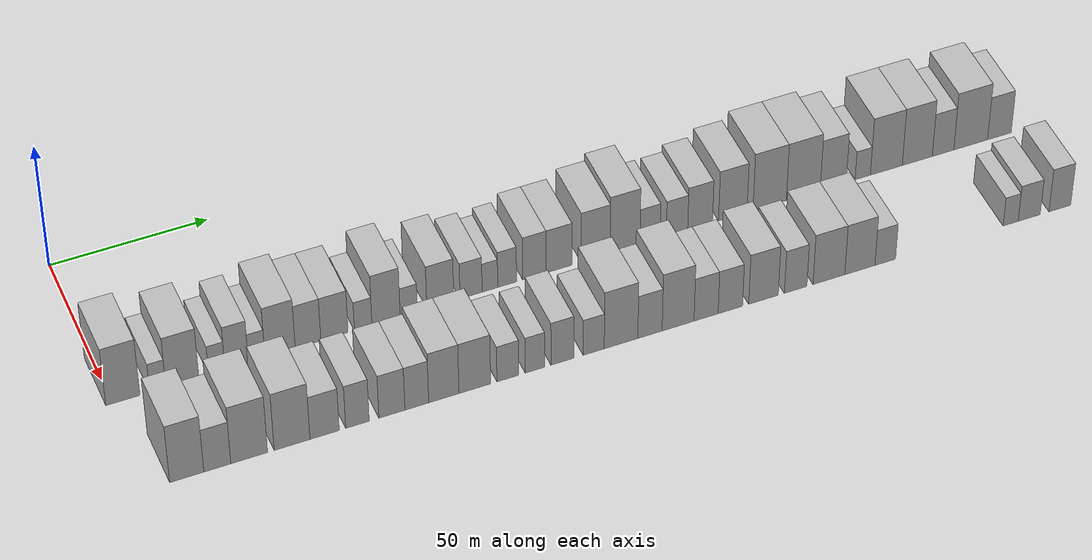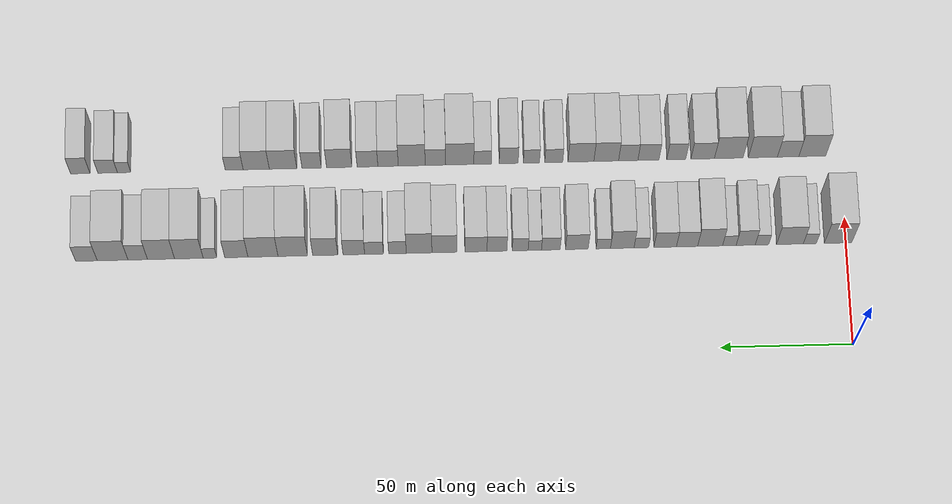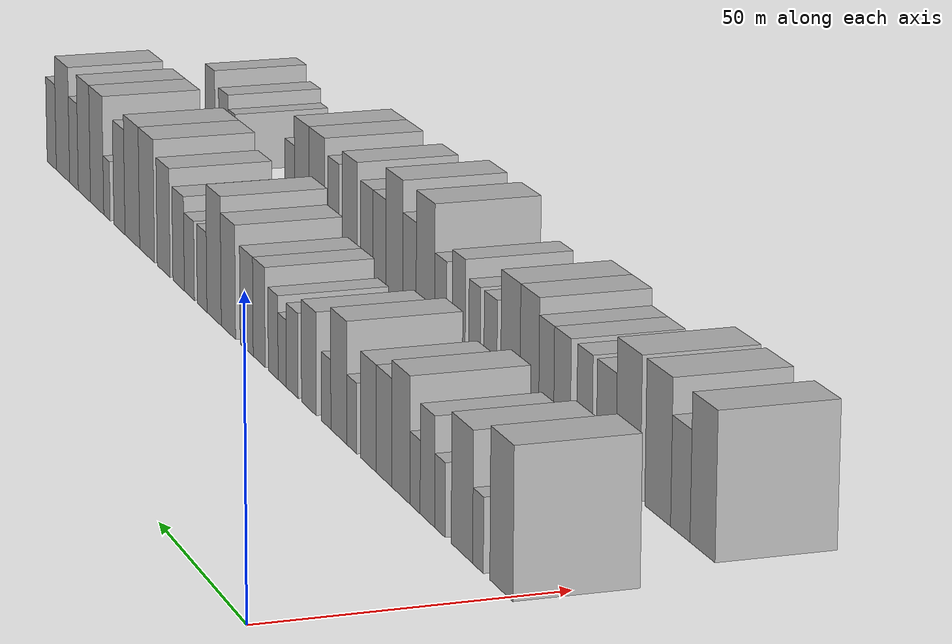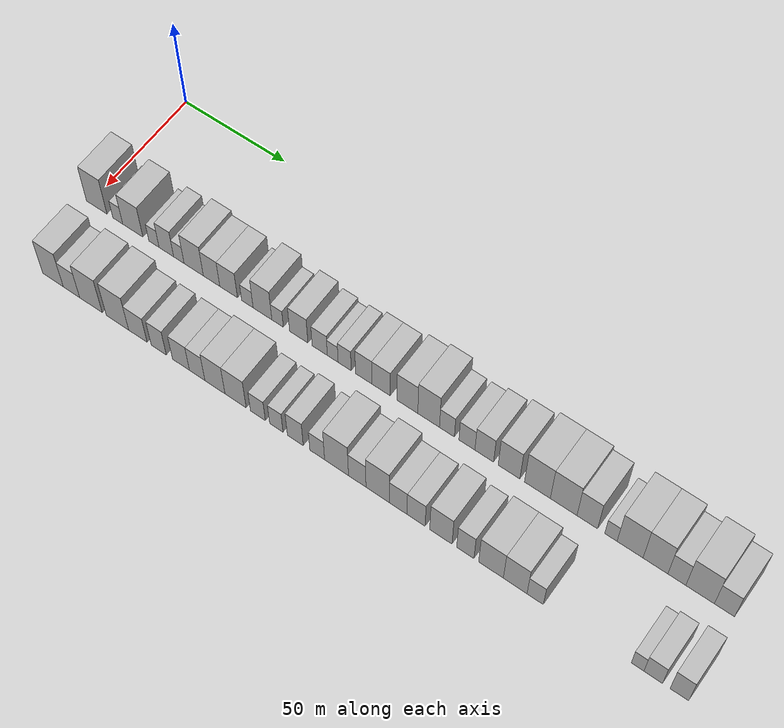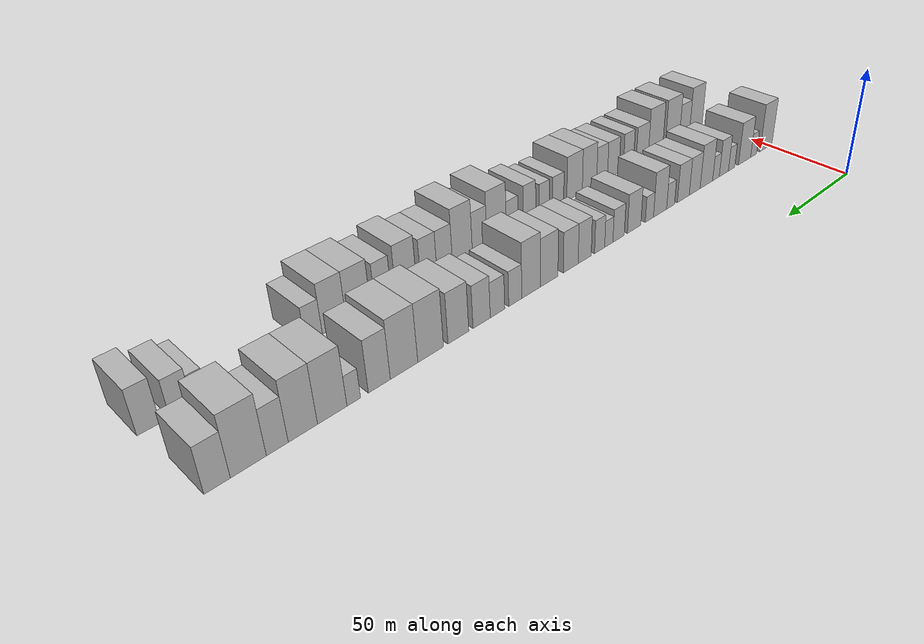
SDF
<sdf version="1.6">
 <world name="default">
  <model name="building_30">
   <static>1</static>
   <pose>50.0000 3.2112 0 0.000000 0.000000 0.000000</pose>
   <link name="link">
    <pose>0 0 12.00 0 0 0</pose>
    <collision name="collision"><geometry><box><size>20.0000 10.4323 24.0000</size></box></geometry></collision>
    <visual name="visual">
     <cast_shadows>0</cast_shadows>
     <geometry><box><size>20.0000 10.4323 24.0000</size></box></geometry>
     <material>
      <script>
       <uri>model://HANNAS_wall/materials/scripts</uri>
       <uri>model://HANNAS_wall/materials/textures</uri>
       <name>vrc/HANNAS_wall</name>
      </script>
     </material>
    </visual>
   </link>
  </model>
  <model name="building_31">
   <static>1</static>
   <pose>50.0000 13.9062 0 0.000000 0.000000 0.000000</pose>
   <link name="link">
    <pose>0 0 6.00 0 0 0</pose>
    <collision name="collision"><geometry><box><size>20.0000 4.9577 12.0000</size></box></geometry></collision>
    <visual name="visual">
     <cast_shadows>0</cast_shadows>
     <geometry><box><size>20.0000 4.9577 12.0000</size></box></geometry>
     <material>
      <script>
       <uri>model://HANNAS_wall/materials/scripts</uri>
       <uri>model://HANNAS_wall/materials/textures</uri>
       <name>vrc/HANNAS_wall</name>
      </script>
     </material>
    </visual>
   </link>
  </model>
  <model name="building_32">
   <static>1</static>
   <pose>50.0000 21.4622 0 0.000000 0.000000 0.000000</pose>
   <link name="link">
    <pose>0 0 10.50 0 0 0</pose>
    <collision name="collision"><geometry><box><size>20.0000 10.1544 21.0000</size></box></geometry></collision>
    <visual name="visual">
     <cast_shadows>0</cast_shadows>
     <geometry><box><size>20.0000 10.1544 21.0000</size></box></geometry>
     <material>
      <script>
       <uri>model://HANNAS_wall/materials/scripts</uri>
       <uri>model://HANNAS_wall/materials/textures</uri>
       <name>vrc/HANNAS_wall</name>
      </script>
     </material>
    </visual>
   </link>
  </model>
  <model name="building_33">
   <static>1</static>
   <pose>50.0000 32.0887 0 0.000000 0.000000 0.000000</pose>
   <link name="link">
    <pose>0 0 6.00 0 0 0</pose>
    <collision name="collision"><geometry><box><size>20.0000 5.0985 12.0000</size></box></geometry></collision>
    <visual name="visual">
     <cast_shadows>0</cast_shadows>
     <geometry><box><size>20.0000 5.0985 12.0000</size></box></geometry>
     <material>
      <script>
       <uri>model://HANNAS_wall/materials/scripts</uri>
       <uri>model://HANNAS_wall/materials/textures</uri>
       <name>vrc/HANNAS_wall</name>
      </script>
     </material>
    </visual>
   </link>
  </model>
  <model name="building_34">
   <static>1</static>
   <pose>50.0000 38.2567 0 0.000000 0.000000 0.000000</pose>
   <link name="link">
    <pose>0 0 9.00 0 0 0</pose>
    <collision name="collision"><geometry><box><size>20.0000 7.2375 18.0000</size></box></geometry></collision>
    <visual name="visual">
     <cast_shadows>0</cast_shadows>
     <geometry><box><size>20.0000 7.2375 18.0000</size></box></geometry>
     <material>
      <script>
       <uri>model://HANNAS_wall/materials/scripts</uri>
       <uri>model://HANNAS_wall/materials/textures</uri>
       <name>vrc/HANNAS_wall</name>
      </script>
     </material>
    </visual>
   </link>
  </model>
  <model name="building_35">
   <static>1</static>
   <pose>50.0000 44.4460 0 0.000000 0.000000 0.000000</pose>
   <link name="link">
    <pose>0 0 6.00 0 0 0</pose>
    <collision name="collision"><geometry><box><size>20.0000 5.1411 12.0000</size></box></geometry></collision>
    <visual name="visual">
     <cast_shadows>0</cast_shadows>
     <geometry><box><size>20.0000 5.1411 12.0000</size></box></geometry>
     <material>
      <script>
       <uri>model://HANNAS_wall/materials/scripts</uri>
       <uri>model://HANNAS_wall/materials/textures</uri>
       <name>vrc/HANNAS_wall</name>
      </script>
     </material>
    </visual>
   </link>
  </model>
  <model name="building_36">
   <static>1</static>
   <pose>50.0000 51.7506 0 0.000000 0.000000 0.000000</pose>
   <link name="link">
    <pose>0 0 10.50 0 0 0</pose>
    <collision name="collision"><geometry><box><size>20.0000 9.4679 21.0000</size></box></geometry></collision>
    <visual name="visual">
     <cast_shadows>0</cast_shadows>
     <geometry><box><size>20.0000 9.4679 21.0000</size></box></geometry>
     <material>
      <script>
       <uri>model://HANNAS_wall/materials/scripts</uri>
       <uri>model://HANNAS_wall/materials/textures</uri>
       <name>vrc/HANNAS_wall</name>
      </script>
     </material>
    </visual>
   </link>
  </model>
  <model name="building_37">
   <static>1</static>
   <pose>50.0000 60.5005 0 0.000000 0.000000 0.000000</pose>
   <link name="link">
    <pose>0 0 9.00 0 0 0</pose>
    <collision name="collision"><geometry><box><size>20.0000 8.0320 18.0000</size></box></geometry></collision>
    <visual name="visual">
     <cast_shadows>0</cast_shadows>
     <geometry><box><size>20.0000 8.0320 18.0000</size></box></geometry>
     <material>
      <script>
       <uri>model://HANNAS_wall/materials/scripts</uri>
       <uri>model://HANNAS_wall/materials/textures</uri>
       <name>vrc/HANNAS_wall</name>
      </script>
     </material>
    </visual>
   </link>
  </model>
  <model name="building_38">
   <static>1</static>
   <pose>50.0000 68.7919 0 0.000000 0.000000 0.000000</pose>
   <link name="link">
    <pose>0 0 9.00 0 0 0</pose>
    <collision name="collision"><geometry><box><size>20.0000 8.5508 18.0000</size></box></geometry></collision>
    <visual name="visual">
     <cast_shadows>0</cast_shadows>
     <geometry><box><size>20.0000 8.5508 18.0000</size></box></geometry>
     <material>
      <script>
       <uri>model://HANNAS_wall/materials/scripts</uri>
       <uri>model://HANNAS_wall/materials/textures</uri>
       <name>vrc/HANNAS_wall</name>
      </script>
     </material>
    </visual>
   </link>
  </model>
  <model name="building_39">
   <static>1</static>
   <pose>50.0000 77.8318 0 0.000000 0.000000 0.000000</pose>
   <link name="link">
    <pose>0 0 6.00 0 0 0</pose>
    <collision name="collision"><geometry><box><size>20.0000 5.5289 12.0000</size></box></geometry></collision>
    <visual name="visual">
     <cast_shadows>0</cast_shadows>
     <geometry><box><size>20.0000 5.5289 12.0000</size></box></geometry>
     <material>
      <script>
       <uri>model://HANNAS_wall/materials/scripts</uri>
       <uri>model://HANNAS_wall/materials/textures</uri>
       <name>vrc/HANNAS_wall</name>
      </script>
     </material>
    </visual>
   </link>
  </model>
  <model name="building_40">
   <static>1</static>
   <pose>50.0000 85.0678 0 0.000000 0.000000 0.000000</pose>
   <link name="link">
    <pose>0 0 10.50 0 0 0</pose>
    <collision name="collision"><geometry><box><size>20.0000 8.9433 21.0000</size></box></geometry></collision>
    <visual name="visual">
     <cast_shadows>0</cast_shadows>
     <geometry><box><size>20.0000 8.9433 21.0000</size></box></geometry>
     <material>
      <script>
       <uri>model://HANNAS_wall/materials/scripts</uri>
       <uri>model://HANNAS_wall/materials/textures</uri>
       <name>vrc/HANNAS_wall</name>
      </script>
     </material>
    </visual>
   </link>
  </model>
  <model name="building_41">
   <static>1</static>
   <pose>50.0000 92.2608 0 0.000000 0.000000 0.000000</pose>
   <link name="link">
    <pose>0 0 6.00 0 0 0</pose>
    <collision name="collision"><geometry><box><size>20.0000 5.4427 12.0000</size></box></geometry></collision>
    <visual name="visual">
     <cast_shadows>0</cast_shadows>
     <geometry><box><size>20.0000 5.4427 12.0000</size></box></geometry>
     <material>
      <script>
       <uri>model://HANNAS_wall/materials/scripts</uri>
       <uri>model://HANNAS_wall/materials/textures</uri>
       <name>vrc/HANNAS_wall</name>
      </script>
     </material>
    </visual>
   </link>
  </model>
  <model name="building_42">
   <static>1</static>
   <pose>50.0000 102.2842 0 0.000000 0.000000 0.000000</pose>
   <link name="link">
    <pose>0 0 9.00 0 0 0</pose>
    <collision name="collision"><geometry><box><size>20.0000 8.6041 18.0000</size></box></geometry></collision>
    <visual name="visual">
     <cast_shadows>0</cast_shadows>
     <geometry><box><size>20.0000 8.6041 18.0000</size></box></geometry>
     <material>
      <script>
       <uri>model://HANNAS_wall/materials/scripts</uri>
       <uri>model://HANNAS_wall/materials/textures</uri>
       <name>vrc/HANNAS_wall</name>
      </script>
     </material>
    </visual>
   </link>
  </model>
  <model name="building_43">
   <static>1</static>
   <pose>50.0000 112.1249 0 0.000000 0.000000 0.000000</pose>
   <link name="link">
    <pose>0 0 7.50 0 0 0</pose>
    <collision name="collision"><geometry><box><size>20.0000 7.0772 15.0000</size></box></geometry></collision>
    <visual name="visual">
     <cast_shadows>0</cast_shadows>
     <geometry><box><size>20.0000 7.0772 15.0000</size></box></geometry>
     <material>
      <script>
       <uri>model://HANNAS_wall/materials/scripts</uri>
       <uri>model://HANNAS_wall/materials/textures</uri>
       <name>vrc/HANNAS_wall</name>
      </script>
     </material>
    </visual>
   </link>
  </model>
  <model name="building_44">
   <static>1</static>
   <pose>50.0000 118.1817 0 0.000000 0.000000 0.000000</pose>
   <link name="link">
    <pose>0 0 6.00 0 0 0</pose>
    <collision name="collision"><geometry><box><size>20.0000 5.0364 12.0000</size></box></geometry></collision>
    <visual name="visual">
     <cast_shadows>0</cast_shadows>
     <geometry><box><size>20.0000 5.0364 12.0000</size></box></geometry>
     <material>
      <script>
       <uri>model://HANNAS_wall/materials/scripts</uri>
       <uri>model://HANNAS_wall/materials/textures</uri>
       <name>vrc/HANNAS_wall</name>
      </script>
     </material>
    </visual>
   </link>
  </model>
  <model name="building_45">
   <static>1</static>
   <pose>50.0000 123.7220 0 0.000000 0.000000 0.000000</pose>
   <link name="link">
    <pose>0 0 7.50 0 0 0</pose>
    <collision name="collision"><geometry><box><size>20.0000 6.0442 15.0000</size></box></geometry></collision>
    <visual name="visual">
     <cast_shadows>0</cast_shadows>
     <geometry><box><size>20.0000 6.0442 15.0000</size></box></geometry>
     <material>
      <script>
       <uri>model://HANNAS_wall/materials/scripts</uri>
       <uri>model://HANNAS_wall/materials/textures</uri>
       <name>vrc/HANNAS_wall</name>
      </script>
     </material>
    </visual>
   </link>
  </model>
  <model name="building_46">
   <static>1</static>
   <pose>50.0000 132.5197 0 0.000000 0.000000 0.000000</pose>
   <link name="link">
    <pose>0 0 9.00 0 0 0</pose>
    <collision name="collision"><geometry><box><size>20.0000 7.5513 18.0000</size></box></geometry></collision>
    <visual name="visual">
     <cast_shadows>0</cast_shadows>
     <geometry><box><size>20.0000 7.5513 18.0000</size></box></geometry>
     <material>
      <script>
       <uri>model://HANNAS_wall/materials/scripts</uri>
       <uri>model://HANNAS_wall/materials/textures</uri>
       <name>vrc/HANNAS_wall</name>
      </script>
     </material>
    </visual>
   </link>
  </model>
  <model name="building_47">
   <static>1</static>
   <pose>50.0000 140.4790 0 0.000000 0.000000 0.000000</pose>
   <link name="link">
    <pose>0 0 9.00 0 0 0</pose>
    <collision name="collision"><geometry><box><size>20.0000 8.3673 18.0000</size></box></geometry></collision>
    <visual name="visual">
     <cast_shadows>0</cast_shadows>
     <geometry><box><size>20.0000 8.3673 18.0000</size></box></geometry>
     <material>
      <script>
       <uri>model://HANNAS_wall/materials/scripts</uri>
       <uri>model://HANNAS_wall/materials/textures</uri>
       <name>vrc/HANNAS_wall</name>
      </script>
     </material>
    </visual>
   </link>
  </model>
  <model name="building_48">
   <static>1</static>
   <pose>50.0000 152.3881 0 0.000000 0.000000 0.000000</pose>
   <link name="link">
    <pose>0 0 10.50 0 0 0</pose>
    <collision name="collision"><geometry><box><size>20.0000 9.4509 21.0000</size></box></geometry></collision>
    <visual name="visual">
     <cast_shadows>0</cast_shadows>
     <geometry><box><size>20.0000 9.4509 21.0000</size></box></geometry>
     <material>
      <script>
       <uri>model://HANNAS_wall/materials/scripts</uri>
       <uri>model://HANNAS_wall/materials/textures</uri>
       <name>vrc/HANNAS_wall</name>
      </script>
     </material>
    </visual>
   </link>
  </model>
  <model name="building_49">
   <static>1</static>
   <pose>50.0000 161.9775 0 0.000000 0.000000 0.000000</pose>
   <link name="link">
    <pose>0 0 12.00 0 0 0</pose>
    <collision name="collision"><geometry><box><size>20.0000 9.7279 24.0000</size></box></geometry></collision>
    <visual name="visual">
     <cast_shadows>0</cast_shadows>
     <geometry><box><size>20.0000 9.7279 24.0000</size></box></geometry>
     <material>
      <script>
       <uri>model://HANNAS_wall/materials/scripts</uri>
       <uri>model://HANNAS_wall/materials/textures</uri>
       <name>vrc/HANNAS_wall</name>
      </script>
     </material>
    </visual>
   </link>
  </model>
  <model name="building_50">
   <static>1</static>
   <pose>50.0000 170.1630 0 0.000000 0.000000 0.000000</pose>
   <link name="link">
    <pose>0 0 7.50 0 0 0</pose>
    <collision name="collision"><geometry><box><size>20.0000 6.6432 15.0000</size></box></geometry></collision>
    <visual name="visual">
     <cast_shadows>0</cast_shadows>
     <geometry><box><size>20.0000 6.6432 15.0000</size></box></geometry>
     <material>
      <script>
       <uri>model://HANNAS_wall/materials/scripts</uri>
       <uri>model://HANNAS_wall/materials/textures</uri>
       <name>vrc/HANNAS_wall</name>
      </script>
     </material>
    </visual>
   </link>
  </model>
  <model name="building_51">
   <static>1</static>
   <pose>50.0000 179.0252 0 0.000000 0.000000 0.000000</pose>
   <link name="link">
    <pose>0 0 7.50 0 0 0</pose>
    <collision name="collision"><geometry><box><size>20.0000 7.0812 15.0000</size></box></geometry></collision>
    <visual name="visual">
     <cast_shadows>0</cast_shadows>
     <geometry><box><size>20.0000 7.0812 15.0000</size></box></geometry>
     <material>
      <script>
       <uri>model://HANNAS_wall/materials/scripts</uri>
       <uri>model://HANNAS_wall/materials/textures</uri>
       <name>vrc/HANNAS_wall</name>
      </script>
     </material>
    </visual>
   </link>
  </model>
  <model name="building_52">
   <static>1</static>
   <pose>50.0000 186.6661 0 0.000000 0.000000 0.000000</pose>
   <link name="link">
    <pose>0 0 9.00 0 0 0</pose>
    <collision name="collision"><geometry><box><size>20.0000 8.2006 18.0000</size></box></geometry></collision>
    <visual name="visual">
     <cast_shadows>0</cast_shadows>
     <geometry><box><size>20.0000 8.2006 18.0000</size></box></geometry>
     <material>
      <script>
       <uri>model://HANNAS_wall/materials/scripts</uri>
       <uri>model://HANNAS_wall/materials/textures</uri>
       <name>vrc/HANNAS_wall</name>
      </script>
     </material>
    </visual>
   </link>
  </model>
  <model name="building_53">
   <static>1</static>
   <pose>50.0000 197.4970 0 0.000000 0.000000 0.000000</pose>
   <link name="link">
    <pose>0 0 10.50 0 0 0</pose>
    <collision name="collision"><geometry><box><size>20.0000 9.4611 21.0000</size></box></geometry></collision>
    <visual name="visual">
     <cast_shadows>0</cast_shadows>
     <geometry><box><size>20.0000 9.4611 21.0000</size></box></geometry>
     <material>
      <script>
       <uri>model://HANNAS_wall/materials/scripts</uri>
       <uri>model://HANNAS_wall/materials/textures</uri>
       <name>vrc/HANNAS_wall</name>
      </script>
     </material>
    </visual>
   </link>
  </model>
  <model name="building_54">
   <static>1</static>
   <pose>50.0000 209.7972 0 0.000000 0.000000 0.000000</pose>
   <link name="link">
    <pose>0 0 12.00 0 0 0</pose>
    <collision name="collision"><geometry><box><size>20.0000 11.1394 24.0000</size></box></geometry></collision>
    <visual name="visual">
     <cast_shadows>0</cast_shadows>
     <geometry><box><size>20.0000 11.1394 24.0000</size></box></geometry>
     <material>
      <script>
       <uri>model://HANNAS_wall/materials/scripts</uri>
       <uri>model://HANNAS_wall/materials/textures</uri>
       <name>vrc/HANNAS_wall</name>
      </script>
     </material>
    </visual>
   </link>
  </model>
  <model name="building_55">
   <static>1</static>
   <pose>50.0000 221.0538 0 0.000000 0.000000 0.000000</pose>
   <link name="link">
    <pose>0 0 12.00 0 0 0</pose>
    <collision name="collision"><geometry><box><size>20.0000 11.3738 24.0000</size></box></geometry></collision>
    <visual name="visual">
     <cast_shadows>0</cast_shadows>
     <geometry><box><size>20.0000 11.3738 24.0000</size></box></geometry>
     <material>
      <script>
       <uri>model://HANNAS_wall/materials/scripts</uri>
       <uri>model://HANNAS_wall/materials/textures</uri>
       <name>vrc/HANNAS_wall</name>
      </script>
     </material>
    </visual>
   </link>
  </model>
  <model name="building_56">
   <static>1</static>
   <pose>50.0000 231.1138 0 0.000000 0.000000 0.000000</pose>
   <link name="link">
    <pose>0 0 10.50 0 0 0</pose>
    <collision name="collision"><geometry><box><size>20.0000 8.7461 21.0000</size></box></geometry></collision>
    <visual name="visual">
     <cast_shadows>0</cast_shadows>
     <geometry><box><size>20.0000 8.7461 21.0000</size></box></geometry>
     <material>
      <script>
       <uri>model://HANNAS_wall/materials/scripts</uri>
       <uri>model://HANNAS_wall/materials/textures</uri>
       <name>vrc/HANNAS_wall</name>
      </script>
     </material>
    </visual>
   </link>
  </model>
  <model name="building_57">
   <static>1</static>
   <pose>50.0000 241.0736 0 0.000000 0.000000 0.000000</pose>
   <link name="link">
    <pose>0 0 6.00 0 0 0</pose>
    <collision name="collision"><geometry><box><size>20.0000 5.1735 12.0000</size></box></geometry></collision>
    <visual name="visual">
     <cast_shadows>0</cast_shadows>
     <geometry><box><size>20.0000 5.1735 12.0000</size></box></geometry>
     <material>
      <script>
       <uri>model://HANNAS_wall/materials/scripts</uri>
       <uri>model://HANNAS_wall/materials/textures</uri>
       <name>vrc/HANNAS_wall</name>
      </script>
     </material>
    </visual>
   </link>
  </model>
  <model name="building_58">
   <static>1</static>
   <pose>50.0000 249.0669 0 0.000000 0.000000 0.000000</pose>
   <link name="link">
    <pose>0 0 12.00 0 0 0</pose>
    <collision name="collision"><geometry><box><size>20.0000 10.8131 24.0000</size></box></geometry></collision>
    <visual name="visual">
     <cast_shadows>0</cast_shadows>
     <geometry><box><size>20.0000 10.8131 24.0000</size></box></geometry>
     <material>
      <script>
       <uri>model://HANNAS_wall/materials/scripts</uri>
       <uri>model://HANNAS_wall/materials/textures</uri>
       <name>vrc/HANNAS_wall</name>
      </script>
     </material>
    </visual>
   </link>
  </model>
  <model name="building_59">
   <static>1</static>
   <pose>50.0000 259.5977 0 0.000000 0.000000 0.000000</pose>
   <link name="link">
    <pose>0 0 12.00 0 0 0</pose>
    <collision name="collision"><geometry><box><size>20.0000 10.2486 24.0000</size></box></geometry></collision>
    <visual name="visual">
     <cast_shadows>0</cast_shadows>
     <geometry><box><size>20.0000 10.2486 24.0000</size></box></geometry>
     <material>
      <script>
       <uri>model://HANNAS_wall/materials/scripts</uri>
       <uri>model://HANNAS_wall/materials/textures</uri>
       <name>vrc/HANNAS_wall</name>
      </script>
     </material>
    </visual>
   </link>
  </model>
  <model name="building_60">
   <static>1</static>
   <pose>50.0000 268.4037 0 0.000000 0.000000 0.000000</pose>
   <link name="link">
    <pose>0 0 9.00 0 0 0</pose>
    <collision name="collision"><geometry><box><size>20.0000 7.3633 18.0000</size></box></geometry></collision>
    <visual name="visual">
     <cast_shadows>0</cast_shadows>
     <geometry><box><size>20.0000 7.3633 18.0000</size></box></geometry>
     <material>
      <script>
       <uri>model://HANNAS_wall/materials/scripts</uri>
       <uri>model://HANNAS_wall/materials/textures</uri>
       <name>vrc/HANNAS_wall</name>
      </script>
     </material>
    </visual>
   </link>
  </model>
  <model name="building_61">
   <static>1</static>
   <pose>50.0000 277.8873 0 0.000000 0.000000 0.000000</pose>
   <link name="link">
    <pose>0 0 12.00 0 0 0</pose>
    <collision name="collision"><geometry><box><size>20.0000 11.6039 24.0000</size></box></geometry></collision>
    <visual name="visual">
     <cast_shadows>0</cast_shadows>
     <geometry><box><size>20.0000 11.6039 24.0000</size></box></geometry>
     <material>
      <script>
       <uri>model://HANNAS_wall/materials/scripts</uri>
       <uri>model://HANNAS_wall/materials/textures</uri>
       <name>vrc/HANNAS_wall</name>
      </script>
     </material>
    </visual>
   </link>
  </model>
  <model name="building_62">
   <static>1</static>
   <pose>50.0000 287.7687 0 0.000000 0.000000 0.000000</pose>
   <link name="link">
    <pose>0 0 9.00 0 0 0</pose>
    <collision name="collision"><geometry><box><size>20.0000 8.1589 18.0000</size></box></geometry></collision>
    <visual name="visual">
     <cast_shadows>0</cast_shadows>
     <geometry><box><size>20.0000 8.1589 18.0000</size></box></geometry>
     <material>
      <script>
       <uri>model://HANNAS_wall/materials/scripts</uri>
       <uri>model://HANNAS_wall/materials/textures</uri>
       <name>vrc/HANNAS_wall</name>
      </script>
     </material>
    </visual>
   </link>
  </model>
  <model name="building_94">
   <static>1</static>
   <pose>85.0000 10.7877 0 0.000000 0.000000 0.000000</pose>
   <link name="link">
    <pose>0 0 12.00 0 0 0</pose>
    <collision name="collision"><geometry><box><size>20.0000 10.3205 24.0000</size></box></geometry></collision>
    <visual name="visual">
     <cast_shadows>0</cast_shadows>
     <geometry><box><size>20.0000 10.3205 24.0000</size></box></geometry>
     <material>
      <script>
       <uri>model://HANNAS_wall/materials/scripts</uri>
       <uri>model://HANNAS_wall/materials/textures</uri>
       <name>vrc/HANNAS_wall</name>
      </script>
     </material>
    </visual>
   </link>
  </model>
  <model name="building_95">
   <static>1</static>
   <pose>85.0000 20.0379 0 0.000000 0.000000 0.000000</pose>
   <link name="link">
    <pose>0 0 9.00 0 0 0</pose>
    <collision name="collision"><geometry><box><size>20.0000 8.1799 18.0000</size></box></geometry></collision>
    <visual name="visual">
     <cast_shadows>0</cast_shadows>
     <geometry><box><size>20.0000 8.1799 18.0000</size></box></geometry>
     <material>
      <script>
       <uri>model://HANNAS_wall/materials/scripts</uri>
       <uri>model://HANNAS_wall/materials/textures</uri>
       <name>vrc/HANNAS_wall</name>
      </script>
     </material>
    </visual>
   </link>
  </model>
  <model name="building_96">
   <static>1</static>
   <pose>85.0000 29.7120 0 0.000000 0.000000 0.000000</pose>
   <link name="link">
    <pose>0 0 12.00 0 0 0</pose>
    <collision name="collision"><geometry><box><size>20.0000 11.1683 24.0000</size></box></geometry></collision>
    <visual name="visual">
     <cast_shadows>0</cast_shadows>
     <geometry><box><size>20.0000 11.1683 24.0000</size></box></geometry>
     <material>
      <script>
       <uri>model://HANNAS_wall/materials/scripts</uri>
       <uri>model://HANNAS_wall/materials/textures</uri>
       <name>vrc/HANNAS_wall</name>
      </script>
     </material>
    </visual>
   </link>
  </model>
  <model name="building_97">
   <static>1</static>
   <pose>85.0000 42.7817 0 0.000000 0.000000 0.000000</pose>
   <link name="link">
    <pose>0 0 12.00 0 0 0</pose>
    <collision name="collision"><geometry><box><size>20.0000 10.9710 24.0000</size></box></geometry></collision>
    <visual name="visual">
     <cast_shadows>0</cast_shadows>
     <geometry><box><size>20.0000 10.9710 24.0000</size></box></geometry>
     <material>
      <script>
       <uri>model://HANNAS_wall/materials/scripts</uri>
       <uri>model://HANNAS_wall/materials/textures</uri>
       <name>vrc/HANNAS_wall</name>
      </script>
     </material>
    </visual>
   </link>
  </model>
  <model name="building_98">
   <static>1</static>
   <pose>85.0000 52.7599 0 0.000000 0.000000 0.000000</pose>
   <link name="link">
    <pose>0 0 9.00 0 0 0</pose>
    <collision name="collision"><geometry><box><size>20.0000 8.9854 18.0000</size></box></geometry></collision>
    <visual name="visual">
     <cast_shadows>0</cast_shadows>
     <geometry><box><size>20.0000 8.9854 18.0000</size></box></geometry>
     <material>
      <script>
       <uri>model://HANNAS_wall/materials/scripts</uri>
       <uri>model://HANNAS_wall/materials/textures</uri>
       <name>vrc/HANNAS_wall</name>
      </script>
     </material>
    </visual>
   </link>
  </model>
  <model name="building_99">
   <static>1</static>
   <pose>85.0000 62.8798 0 0.000000 0.000000 0.000000</pose>
   <link name="link">
    <pose>0 0 9.00 0 0 0</pose>
    <collision name="collision"><geometry><box><size>20.0000 7.2545 18.0000</size></box></geometry></collision>
    <visual name="visual">
     <cast_shadows>0</cast_shadows>
     <geometry><box><size>20.0000 7.2545 18.0000</size></box></geometry>
     <material>
      <script>
       <uri>model://HANNAS_wall/materials/scripts</uri>
       <uri>model://HANNAS_wall/materials/textures</uri>
       <name>vrc/HANNAS_wall</name>
      </script>
     </material>
    </visual>
   </link>
  </model>
  <model name="building_100">
   <static>1</static>
   <pose>85.0000 73.5448 0 0.000000 0.000000 0.000000</pose>
   <link name="link">
    <pose>0 0 9.00 0 0 0</pose>
    <collision name="collision"><geometry><box><size>20.0000 8.0755 18.0000</size></box></geometry></collision>
    <visual name="visual">
     <cast_shadows>0</cast_shadows>
     <geometry><box><size>20.0000 8.0755 18.0000</size></box></geometry>
     <material>
      <script>
       <uri>model://HANNAS_wall/materials/scripts</uri>
       <uri>model://HANNAS_wall/materials/textures</uri>
       <name>vrc/HANNAS_wall</name>
      </script>
     </material>
    </visual>
   </link>
  </model>
  <model name="building_101">
   <static>1</static>
   <pose>85.0000 81.2757 0 0.000000 0.000000 0.000000</pose>
   <link name="link">
    <pose>0 0 9.00 0 0 0</pose>
    <collision name="collision"><geometry><box><size>20.0000 7.3863 18.0000</size></box></geometry></collision>
    <visual name="visual">
     <cast_shadows>0</cast_shadows>
     <geometry><box><size>20.0000 7.3863 18.0000</size></box></geometry>
     <material>
      <script>
       <uri>model://HANNAS_wall/materials/scripts</uri>
       <uri>model://HANNAS_wall/materials/textures</uri>
       <name>vrc/HANNAS_wall</name>
      </script>
     </material>
    </visual>
   </link>
  </model>
  <model name="building_102">
   <static>1</static>
   <pose>85.0000 89.6971 0 0.000000 0.000000 0.000000</pose>
   <link name="link">
    <pose>0 0 10.50 0 0 0</pose>
    <collision name="collision"><geometry><box><size>20.0000 9.4564 21.0000</size></box></geometry></collision>
    <visual name="visual">
     <cast_shadows>0</cast_shadows>
     <geometry><box><size>20.0000 9.4564 21.0000</size></box></geometry>
     <material>
      <script>
       <uri>model://HANNAS_wall/materials/scripts</uri>
       <uri>model://HANNAS_wall/materials/textures</uri>
       <name>vrc/HANNAS_wall</name>
      </script>
     </material>
    </visual>
   </link>
  </model>
  <model name="building_103">
   <static>1</static>
   <pose>85.0000 99.3850 0 0.000000 0.000000 0.000000</pose>
   <link name="link">
    <pose>0 0 10.50 0 0 0</pose>
    <collision name="collision"><geometry><box><size>20.0000 9.9195 21.0000</size></box></geometry></collision>
    <visual name="visual">
     <cast_shadows>0</cast_shadows>
     <geometry><box><size>20.0000 9.9195 21.0000</size></box></geometry>
     <material>
      <script>
       <uri>model://HANNAS_wall/materials/scripts</uri>
       <uri>model://HANNAS_wall/materials/textures</uri>
       <name>vrc/HANNAS_wall</name>
      </script>
     </material>
    </visual>
   </link>
  </model>
  <model name="building_104">
   <static>1</static>
   <pose>85.0000 109.7966 0 0.000000 0.000000 0.000000</pose>
   <link name="link">
    <pose>0 0 7.50 0 0 0</pose>
    <collision name="collision"><geometry><box><size>20.0000 6.9036 15.0000</size></box></geometry></collision>
    <visual name="visual">
     <cast_shadows>0</cast_shadows>
     <geometry><box><size>20.0000 6.9036 15.0000</size></box></geometry>
     <material>
      <script>
       <uri>model://HANNAS_wall/materials/scripts</uri>
       <uri>model://HANNAS_wall/materials/textures</uri>
       <name>vrc/HANNAS_wall</name>
      </script>
     </material>
    </visual>
   </link>
  </model>
  <model name="building_105">
   <static>1</static>
   <pose>85.0000 118.3284 0 0.000000 0.000000 0.000000</pose>
   <link name="link">
    <pose>0 0 7.50 0 0 0</pose>
    <collision name="collision"><geometry><box><size>20.0000 6.1600 15.0000</size></box></geometry></collision>
    <visual name="visual">
     <cast_shadows>0</cast_shadows>
     <geometry><box><size>20.0000 6.1600 15.0000</size></box></geometry>
     <material>
      <script>
       <uri>model://HANNAS_wall/materials/scripts</uri>
       <uri>model://HANNAS_wall/materials/textures</uri>
       <name>vrc/HANNAS_wall</name>
      </script>
     </material>
    </visual>
   </link>
  </model>
  <model name="building_106">
   <static>1</static>
   <pose>85.0000 127.0270 0 0.000000 0.000000 0.000000</pose>
   <link name="link">
    <pose>0 0 9.00 0 0 0</pose>
    <collision name="collision"><geometry><box><size>20.0000 7.2371 18.0000</size></box></geometry></collision>
    <visual name="visual">
     <cast_shadows>0</cast_shadows>
     <geometry><box><size>20.0000 7.2371 18.0000</size></box></geometry>
     <material>
      <script>
       <uri>model://HANNAS_wall/materials/scripts</uri>
       <uri>model://HANNAS_wall/materials/textures</uri>
       <name>vrc/HANNAS_wall</name>
      </script>
     </material>
    </visual>
   </link>
  </model>
  <model name="building_107">
   <static>1</static>
   <pose>85.0000 136.9950 0 0.000000 0.000000 0.000000</pose>
   <link name="link">
    <pose>0 0 7.50 0 0 0</pose>
    <collision name="collision"><geometry><box><size>20.0000 6.6989 15.0000</size></box></geometry></collision>
    <visual name="visual">
     <cast_shadows>0</cast_shadows>
     <geometry><box><size>20.0000 6.6989 15.0000</size></box></geometry>
     <material>
      <script>
       <uri>model://HANNAS_wall/materials/scripts</uri>
       <uri>model://HANNAS_wall/materials/textures</uri>
       <name>vrc/HANNAS_wall</name>
      </script>
     </material>
    </visual>
   </link>
  </model>
  <model name="building_108">
   <static>1</static>
   <pose>85.0000 145.7256 0 0.000000 0.000000 0.000000</pose>
   <link name="link">
    <pose>0 0 12.00 0 0 0</pose>
    <collision name="collision"><geometry><box><size>20.0000 10.7622 24.0000</size></box></geometry></collision>
    <visual name="visual">
     <cast_shadows>0</cast_shadows>
     <geometry><box><size>20.0000 10.7622 24.0000</size></box></geometry>
     <material>
      <script>
       <uri>model://HANNAS_wall/materials/scripts</uri>
       <uri>model://HANNAS_wall/materials/textures</uri>
       <name>vrc/HANNAS_wall</name>
      </script>
     </material>
    </visual>
   </link>
  </model>
  <model name="building_109">
   <static>1</static>
   <pose>85.0000 155.0062 0 0.000000 0.000000 0.000000</pose>
   <link name="link">
    <pose>0 0 9.00 0 0 0</pose>
    <collision name="collision"><geometry><box><size>20.0000 7.7991 18.0000</size></box></geometry></collision>
    <visual name="visual">
     <cast_shadows>0</cast_shadows>
     <geometry><box><size>20.0000 7.7991 18.0000</size></box></geometry>
     <material>
      <script>
       <uri>model://HANNAS_wall/materials/scripts</uri>
       <uri>model://HANNAS_wall/materials/textures</uri>
       <name>vrc/HANNAS_wall</name>
      </script>
     </material>
    </visual>
   </link>
  </model>
  <model name="building_110">
   <static>1</static>
   <pose>85.0000 164.0584 0 0.000000 0.000000 0.000000</pose>
   <link name="link">
    <pose>0 0 12.00 0 0 0</pose>
    <collision name="collision"><geometry><box><size>20.0000 10.3052 24.0000</size></box></geometry></collision>
    <visual name="visual">
     <cast_shadows>0</cast_shadows>
     <geometry><box><size>20.0000 10.3052 24.0000</size></box></geometry>
     <material>
      <script>
       <uri>model://HANNAS_wall/materials/scripts</uri>
       <uri>model://HANNAS_wall/materials/textures</uri>
       <name>vrc/HANNAS_wall</name>
      </script>
     </material>
    </visual>
   </link>
  </model>
  <model name="building_111">
   <static>1</static>
   <pose>85.0000 173.1101 0 0.000000 0.000000 0.000000</pose>
   <link name="link">
    <pose>0 0 9.00 0 0 0</pose>
    <collision name="collision"><geometry><box><size>20.0000 7.7981 18.0000</size></box></geometry></collision>
    <visual name="visual">
     <cast_shadows>0</cast_shadows>
     <geometry><box><size>20.0000 7.7981 18.0000</size></box></geometry>
     <material>
      <script>
       <uri>model://HANNAS_wall/materials/scripts</uri>
       <uri>model://HANNAS_wall/materials/textures</uri>
       <name>vrc/HANNAS_wall</name>
      </script>
     </material>
    </visual>
   </link>
  </model>
  <model name="building_112">
   <static>1</static>
   <pose>85.0000 180.9794 0 0.000000 0.000000 0.000000</pose>
   <link name="link">
    <pose>0 0 9.00 0 0 0</pose>
    <collision name="collision"><geometry><box><size>20.0000 7.9404 18.0000</size></box></geometry></collision>
    <visual name="visual">
     <cast_shadows>0</cast_shadows>
     <geometry><box><size>20.0000 7.9404 18.0000</size></box></geometry>
     <material>
      <script>
       <uri>model://HANNAS_wall/materials/scripts</uri>
       <uri>model://HANNAS_wall/materials/textures</uri>
       <name>vrc/HANNAS_wall</name>
      </script>
     </material>
    </visual>
   </link>
  </model>
  <model name="building_113">
   <static>1</static>
   <pose>85.0000 191.7779 0 0.000000 0.000000 0.000000</pose>
   <link name="link">
    <pose>0 0 10.50 0 0 0</pose>
    <collision name="collision"><geometry><box><size>20.0000 9.6567 21.0000</size></box></geometry></collision>
    <visual name="visual">
     <cast_shadows>0</cast_shadows>
     <geometry><box><size>20.0000 9.6567 21.0000</size></box></geometry>
     <material>
      <script>
       <uri>model://HANNAS_wall/materials/scripts</uri>
       <uri>model://HANNAS_wall/materials/textures</uri>
       <name>vrc/HANNAS_wall</name>
      </script>
     </material>
    </visual>
   </link>
  </model>
  <model name="building_114">
   <static>1</static>
   <pose>85.0000 202.3058 0 0.000000 0.000000 0.000000</pose>
   <link name="link">
    <pose>0 0 9.00 0 0 0</pose>
    <collision name="collision"><geometry><box><size>20.0000 7.3991 18.0000</size></box></geometry></collision>
    <visual name="visual">
     <cast_shadows>0</cast_shadows>
     <geometry><box><size>20.0000 7.3991 18.0000</size></box></geometry>
     <material>
      <script>
       <uri>model://HANNAS_wall/materials/scripts</uri>
       <uri>model://HANNAS_wall/materials/textures</uri>
       <name>vrc/HANNAS_wall</name>
      </script>
     </material>
    </visual>
   </link>
  </model>
  <model name="building_115">
   <static>1</static>
   <pose>85.0000 213.2552 0 0.000000 0.000000 0.000000</pose>
   <link name="link">
    <pose>0 0 10.50 0 0 0</pose>
    <collision name="collision"><geometry><box><size>20.0000 10.4997 21.0000</size></box></geometry></collision>
    <visual name="visual">
     <cast_shadows>0</cast_shadows>
     <geometry><box><size>20.0000 10.4997 21.0000</size></box></geometry>
     <material>
      <script>
       <uri>model://HANNAS_wall/materials/scripts</uri>
       <uri>model://HANNAS_wall/materials/textures</uri>
       <name>vrc/HANNAS_wall</name>
      </script>
     </material>
    </visual>
   </link>
  </model>
  <model name="building_116">
   <static>1</static>
   <pose>85.0000 223.4865 0 0.000000 0.000000 0.000000</pose>
   <link name="link">
    <pose>0 0 10.50 0 0 0</pose>
    <collision name="collision"><geometry><box><size>20.0000 9.9627 21.0000</size></box></geometry></collision>
    <visual name="visual">
     <cast_shadows>0</cast_shadows>
     <geometry><box><size>20.0000 9.9627 21.0000</size></box></geometry>
     <material>
      <script>
       <uri>model://HANNAS_wall/materials/scripts</uri>
       <uri>model://HANNAS_wall/materials/textures</uri>
       <name>vrc/HANNAS_wall</name>
      </script>
     </material>
    </visual>
   </link>
  </model>
  <model name="building_117">
   <static>1</static>
   <pose>85.0000 231.8869 0 0.000000 0.000000 0.000000</pose>
   <link name="link">
    <pose>0 0 7.50 0 0 0</pose>
    <collision name="collision"><geometry><box><size>20.0000 6.8382 15.0000</size></box></geometry></collision>
    <visual name="visual">
     <cast_shadows>0</cast_shadows>
     <geometry><box><size>20.0000 6.8382 15.0000</size></box></geometry>
     <material>
      <script>
       <uri>model://HANNAS_wall/materials/scripts</uri>
       <uri>model://HANNAS_wall/materials/textures</uri>
       <name>vrc/HANNAS_wall</name>
      </script>
     </material>
    </visual>
   </link>
  </model>
  <model name="building_118">
   <static>1</static>
   <pose>85.0000 273.9490 0 0.000000 0.000000 0.000000</pose>
   <link name="link">
    <pose>0 0 6.00 0 0 0</pose>
    <collision name="collision"><geometry><box><size>20.0000 5.0953 12.0000</size></box></geometry></collision>
    <visual name="visual">
     <cast_shadows>0</cast_shadows>
     <geometry><box><size>20.0000 5.0953 12.0000</size></box></geometry>
     <material>
      <script>
       <uri>model://HANNAS_wall/materials/scripts</uri>
       <uri>model://HANNAS_wall/materials/textures</uri>
       <name>vrc/HANNAS_wall</name>
      </script>
     </material>
    </visual>
   </link>
  </model>
  <model name="building_119">
   <static>1</static>
   <pose>85.0000 280.2203 0 0.000000 0.000000 0.000000</pose>
   <link name="link">
    <pose>0 0 7.50 0 0 0</pose>
    <collision name="collision"><geometry><box><size>20.0000 7.4474 15.0000</size></box></geometry></collision>
    <visual name="visual">
     <cast_shadows>0</cast_shadows>
     <geometry><box><size>20.0000 7.4474 15.0000</size></box></geometry>
     <material>
      <script>
       <uri>model://HANNAS_wall/materials/scripts</uri>
       <uri>model://HANNAS_wall/materials/textures</uri>
       <name>vrc/HANNAS_wall</name>
      </script>
     </material>
    </visual>
   </link>
  </model>
  <model name="building_120">
   <static>1</static>
   <pose>85.0000 290.6408 0 0.000000 0.000000 0.000000</pose>
   <link name="link">
    <pose>0 0 9.00 0 0 0</pose>
    <collision name="collision"><geometry><box><size>20.0000 7.3935 18.0000</size></box></geometry></collision>
    <visual name="visual">
     <cast_shadows>0</cast_shadows>
     <geometry><box><size>20.0000 7.3935 18.0000</size></box></geometry>
     <material>
      <script>
       <uri>model://HANNAS_wall/materials/scripts</uri>
       <uri>model://HANNAS_wall/materials/textures</uri>
       <name>vrc/HANNAS_wall</name>
      </script>
     </material>
    </visual>
   </link>
  </model>
 </world>
</sdf>
